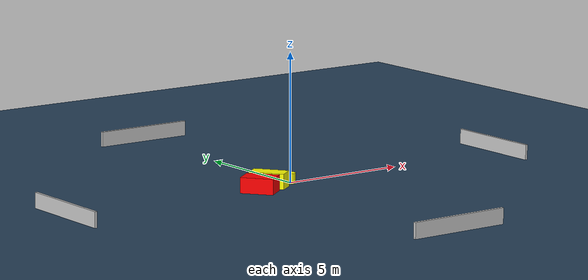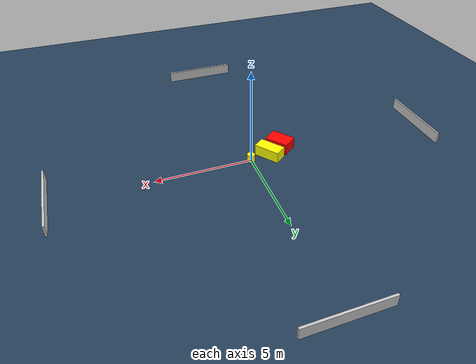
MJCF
<?xml version="1.0" ?>
<mujoco model="generated_environment">
  <option timestep="0.01" integrator="RK4" cone="elliptic"/>
  <default>
    <geom density="1"/>
  </default>
  <asset>
    <texture builtin="gradient" height="3072" name="skybox" rgb1="0.3 0.5 0.7" rgb2="0 0 0" type="skybox" width="512"/>
    <texture builtin="checker" height="300" name="groundplane" rgb1="0.2 0.3 0.4" rgb2="0.1 0.2 0.3" type="2d" width="300"/>
    <material name="groundplane" reflectance="0.2" texrepeat="5 5" texture="groundplane"/>
  </asset>
  <worldbody>
    <light dir="0 0 -1" directional="true" pos="0 0 1.5"/>
    <geom condim="3" friction="0.5 0.005 0.001" material="groundplane" name="floor" pos="0 0 0" size="0 0 0.05" type="plane"/>
    <body name="walls">
      <geom name="wall_1" condim="4" pos="-10.0 0.0 0.3" rgba="0.800000011920929 0.800000011920929 0.800000011920929 1.0" size="0.05 2.0 0.3" type="box"/>
      <geom name="wall_2" condim="4" pos="10.0 0.0 0.3" rgba="0.800000011920929 0.800000011920929 0.800000011920929 1.0" size="0.05 2.0 0.3" type="box"/>
      <geom name="wall_3" condim="4" pos="0.0 -10.0 0.3" rgba="0.800000011920929 0.800000011920929 0.800000011920929 1.0" size="2.0 0.05 0.3" type="box"/>
      <geom name="wall_4" condim="4" pos="0.0 10.0 0.3" rgba="0.800000011920929 0.800000011920929 0.800000011920929 1.0" size="2.0 0.05 0.3" type="box"/>
    </body>
    <body name="robot">
      <joint name="joint_x" type="slide" pos="0 0 0" axis="1 0 0"/>
      <joint name="joint_y" type="slide" pos="0 0 0" axis="0 1 0"/>
      <geom name="robot" type="cylinder" pos="0.0 0.0 0.2" size="0.2 0.2 0.0" mass="5.0" friction="1.0 0.005 0.0001" condim="4" rgba="1.0 1.0 0.0 1.0"/>
    </body>
    <body name="obstacle_1_movable">
      <geom name="obstacle_1_movable" condim="4" pos="-1.0538302944128504 -0.07459884189005934 0.3" euler="0 0 126.36936700616403" friction="0.0 0.005 0.001" rgba="1.0 1.0 0.0 1.0" size="0.6877701160613898 0.33742410585885996 0.3" type="box" mass="0.1"/>
      <joint type="free"/>
    </body>
    <body name="obstacle_2_static">
      <geom name="obstacle_2_static" condim="4" pos="-1.8402671712250116 -0.5849930428828335 0.3" euler="0 0 307.4293286162055" friction="0.0 0.005 0.001" rgba="1.0 0.0 0.0 1.0" size="0.6350911559853957 0.43111552284356164 0.3" type="box"/>
    </body>
  </worldbody>
  <actuator>
    <motor name="actuator_x" joint="joint_x" gear="1" ctrlrange="-1 1"/>
    <motor name="actuator_y" joint="joint_y" gear="1" ctrlrange="-1 1"/>
  </actuator>
</mujoco>
